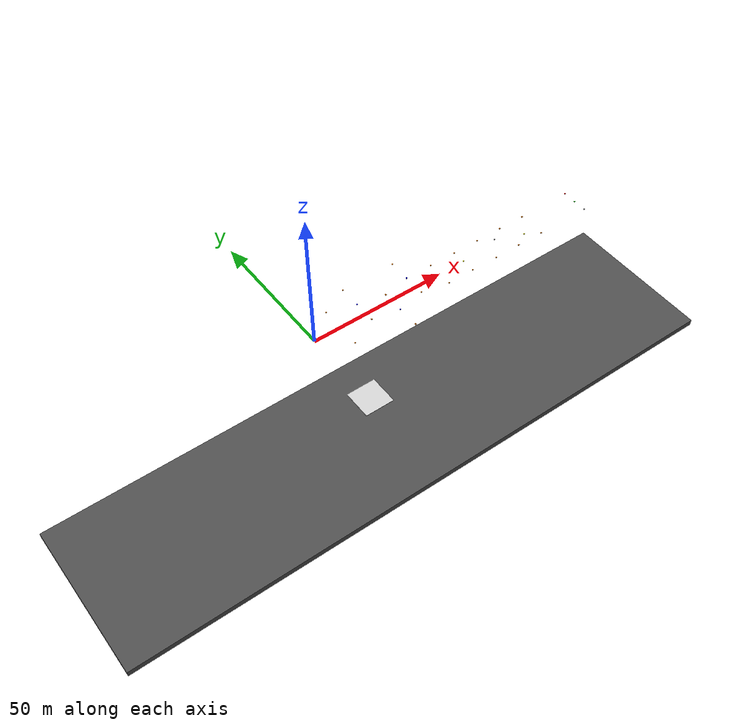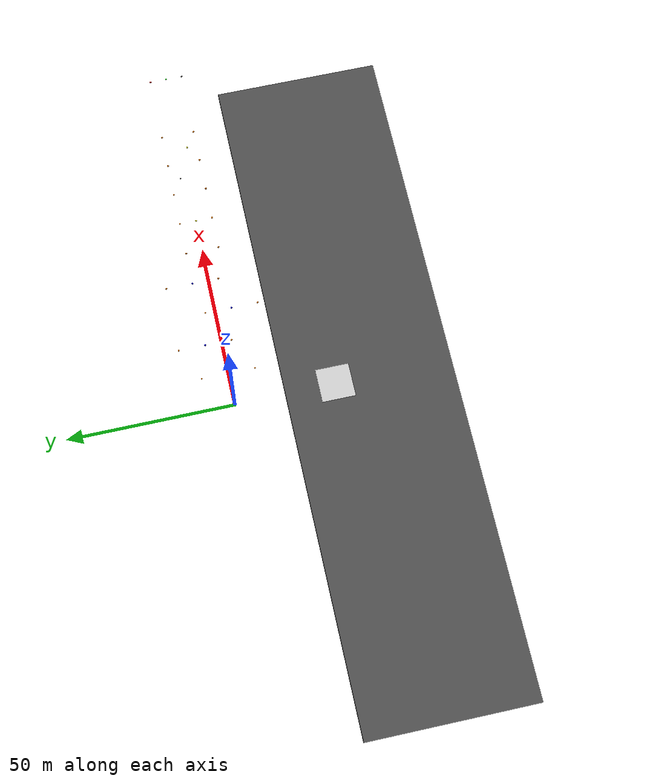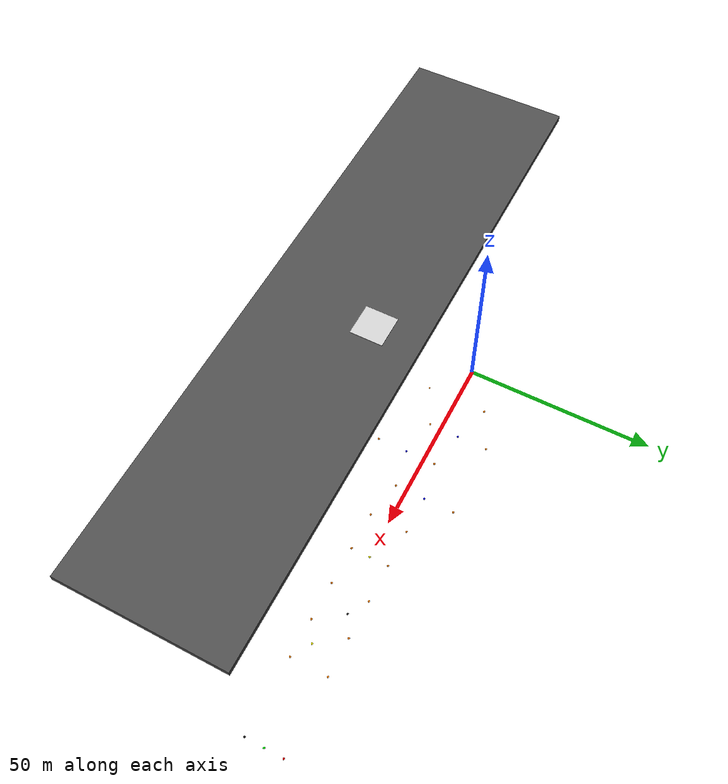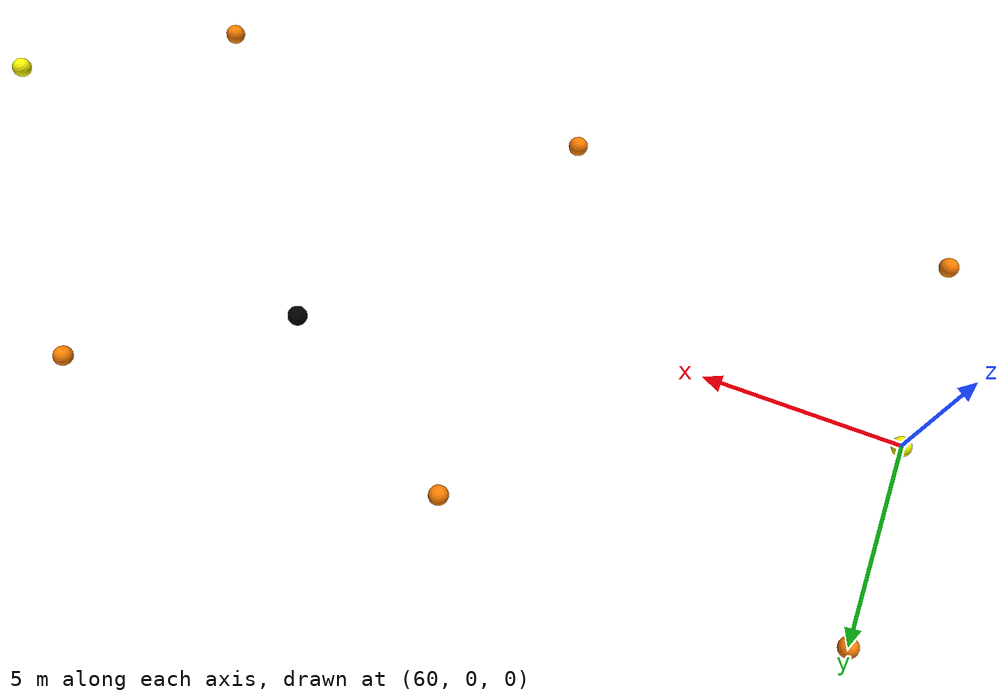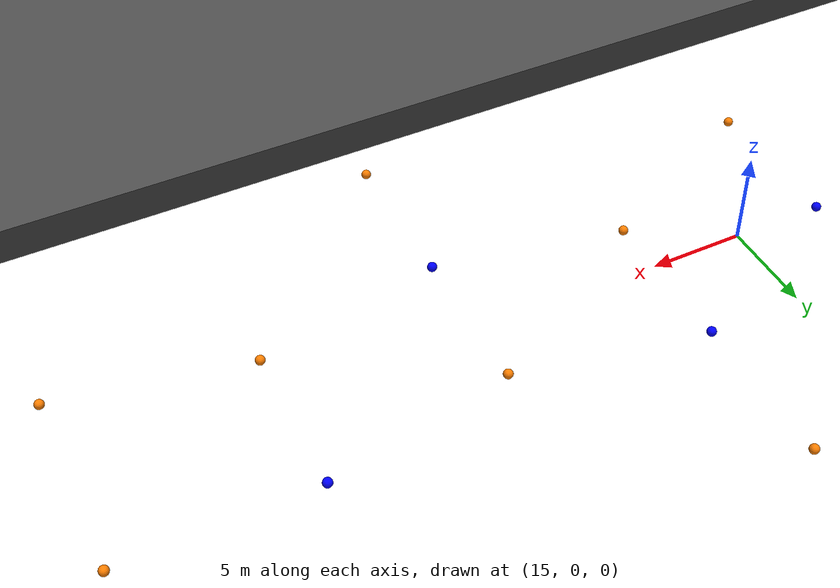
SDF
<sdf version="1.6">
 <world name="course_world">
  <plugin filename="gz-sim-physics-system" name="gz::sim::systems::Physics"/>
  <plugin filename="gz-sim-sensors-system" name="gz::sim::systems::Sensors">
   <render_engine>ogre2</render_engine>
   <background_color>0.8 0.8 0.8</background_color>
  </plugin>
  <plugin filename="gz-sim-scene-broadcaster-system" name="gz::sim::systems::SceneBroadcaster"/>
  <plugin filename="gz-sim-user-commands-system" name="gz::sim::systems::UserCommands"/>
  <plugin filename="gz-sim-imu-system" name="gz::sim::systems::Imu"/>
  <plugin filename="gz-sim-navsat-system" name="gz::sim::systems::NavSat"/>
  <spherical_coordinates>
   <surface_model>EARTH_WGS84</surface_model>
   <world_frame_orientation>ENU</world_frame_orientation>
   <latitude_deg>-22.986687</latitude_deg>
   <longitude_deg>-43.202501</longitude_deg>
   <elevation>0</elevation>
   <heading_deg>0</heading_deg>
  </spherical_coordinates>
  <scene><ambient>1.0 1.0 1.0</ambient><background>0.8 0.8 0.8</background></scene>
  <light type="directional" name="sun">
   <pose>0 0 10 0 0 0</pose>
   <diffuse>0.8 0.8 0.8 1</diffuse>
   <specular>0.6 0.6 0.6 1</specular>
   <direction>-0.5 0.1 -0.9</direction>
  </light>
  <model name="land">
   <static>true</static>
   <pose>0 -40 1 0 0 0</pose>
   <link name="link">
    <collision name="collision"><geometry><box><size>200 50 2</size></box></geometry></collision>
    <visual name="visual">
     <geometry><box><size>200 50 2</size></box></geometry>
     <material><ambient>0.3 0.3 0.3 1</ambient><diffuse>0.3 0.3 0.3 1</diffuse></material>
    </visual>
   </link>
  </model>
  <model name="drone_zone">
   <static>true</static>
   <pose>0 -30 2.1 0 0 0</pose>
   <link name="link">
    <visual name="visual">
     <geometry><box><size>10 10 0.1</size></box></geometry>
     <material><ambient>0.8 0.8 0.8 1</ambient><diffuse>0.8 0.8 0.8 1</diffuse></material>
    </visual>
   </link>
  </model>
  <model name="gn1">
   <pose>10 0 0 0 0 0</pose>
   <plugin filename="gz-waves1-hydrodynamics-system" name="gz::sim::systems::Hydrodynamics"/>
   <link name="base_link">
    <collision name="collision"><geometry><sphere><radius>0.25</radius></sphere></geometry></collision>
    <visual name="visual">
     <geometry><sphere><radius>0.25</radius></sphere></geometry>
     <material><ambient>0 0 1 1</ambient><diffuse>0 0 1 1</diffuse><specular>0.5 0.5 0.5 1</specular></material>
    </visual>
    <inertial>
     <mass>6.545</mass>
     <inertia>
      <ixx>0.1636</ixx>
      <ixy>0.0</ixy>
      <ixz>0.0</ixz>
      <iyy>0.1636</iyy>
      <iyz>0.0</iyz>
      <izz>0.1636</izz>
     </inertia>
    </inertial>
   </link>
  </model>
  <model name="gn2">
   <pose>20 5 0 0 0 0</pose>
   <plugin filename="gz-waves1-hydrodynamics-system" name="gz::sim::systems::Hydrodynamics"/>
   <link name="base_link">
    <collision name="collision"><geometry><sphere><radius>0.25</radius></sphere></geometry></collision>
    <visual name="visual">
     <geometry><sphere><radius>0.25</radius></sphere></geometry>
     <material><ambient>0 0 1 1</ambient><diffuse>0 0 1 1</diffuse><specular>0.5 0.5 0.5 1</specular></material>
    </visual>
    <inertial>
     <mass>6.545</mass>
     <inertia>
      <ixx>0.1636</ixx>
      <ixy>0.0</ixy>
      <ixz>0.0</ixz>
      <iyy>0.1636</iyy>
      <iyz>0.0</iyz>
      <izz>0.1636</izz>
     </inertia>
    </inertial>
   </link>
  </model>
  <model name="gn3">
   <pose>30 -5 0 0 0 0</pose>
   <plugin filename="gz-waves1-hydrodynamics-system" name="gz::sim::systems::Hydrodynamics"/>
   <link name="base_link">
    <collision name="collision"><geometry><sphere><radius>0.25</radius></sphere></geometry></collision>
    <visual name="visual">
     <geometry><sphere><radius>0.25</radius></sphere></geometry>
     <material><ambient>0 0 1 1</ambient><diffuse>0 0 1 1</diffuse><specular>0.5 0.5 0.5 1</specular></material>
    </visual>
    <inertial>
     <mass>6.545</mass>
     <inertia>
      <ixx>0.1636</ixx>
      <ixy>0.0</ixy>
      <ixz>0.0</ixz>
      <iyy>0.1636</iyy>
      <iyz>0.0</iyz>
      <izz>0.1636</izz>
     </inertia>
    </inertial>
   </link>
  </model>
  <model name="gn4">
   <pose>40 5 0 0 0 0</pose>
   <plugin filename="gz-waves1-hydrodynamics-system" name="gz::sim::systems::Hydrodynamics"/>
   <link name="base_link">
    <collision name="collision"><geometry><sphere><radius>0.25</radius></sphere></geometry></collision>
    <visual name="visual">
     <geometry><sphere><radius>0.25</radius></sphere></geometry>
     <material><ambient>0 0 1 1</ambient><diffuse>0 0 1 1</diffuse><specular>0.5 0.5 0.5 1</specular></material>
    </visual>
    <inertial>
     <mass>6.545</mass>
     <inertia>
      <ixx>0.1636</ixx>
      <ixy>0.0</ixy>
      <ixz>0.0</ixz>
      <iyy>0.1636</iyy>
      <iyz>0.0</iyz>
      <izz>0.1636</izz>
     </inertia>
    </inertial>
   </link>
  </model>
  <model name="edge_1_1">
   <pose>10 8 0 0 0 0</pose>
   <plugin filename="gz-waves1-hydrodynamics-system" name="gz::sim::systems::Hydrodynamics"/>
   <link name="base_link">
    <collision name="collision"><geometry><sphere><radius>0.25</radius></sphere></geometry></collision>
    <visual name="visual">
     <geometry><sphere><radius>0.25</radius></sphere></geometry>
     <material>
      <ambient>1 0.5 0 1</ambient>
      <diffuse>1 0.5 0 1</diffuse>
      <specular>0.5 0.5 0.5 1</specular>
     </material>
    </visual>
    <inertial>
     <mass>6.545</mass>
     <inertia>
      <ixx>0.1636</ixx>
      <ixy>0.0</ixy>
      <ixz>0.0</ixz>
      <iyy>0.1636</iyy>
      <iyz>0.0</iyz>
      <izz>0.1636</izz>
     </inertia>
    </inertial>
   </link>
  </model>
  <model name="edge_1_2">
   <pose>20 13 0 0 0 0</pose>
   <plugin filename="gz-waves1-hydrodynamics-system" name="gz::sim::systems::Hydrodynamics"/>
   <link name="base_link">
    <collision name="collision"><geometry><sphere><radius>0.25</radius></sphere></geometry></collision>
    <visual name="visual">
     <geometry><sphere><radius>0.25</radius></sphere></geometry>
     <material>
      <ambient>1 0.5 0 1</ambient>
      <diffuse>1 0.5 0 1</diffuse>
      <specular>0.5 0.5 0.5 1</specular>
     </material>
    </visual>
    <inertial>
     <mass>6.545</mass>
     <inertia>
      <ixx>0.1636</ixx>
      <ixy>0.0</ixy>
      <ixz>0.0</ixz>
      <iyy>0.1636</iyy>
      <iyz>0.0</iyz>
      <izz>0.1636</izz>
     </inertia>
    </inertial>
   </link>
  </model>
  <model name="edge_1_3">
   <pose>30 3 0 0 0 0</pose>
   <plugin filename="gz-waves1-hydrodynamics-system" name="gz::sim::systems::Hydrodynamics"/>
   <link name="base_link">
    <collision name="collision"><geometry><sphere><radius>0.25</radius></sphere></geometry></collision>
    <visual name="visual">
     <geometry><sphere><radius>0.25</radius></sphere></geometry>
     <material>
      <ambient>1 0.5 0 1</ambient>
      <diffuse>1 0.5 0 1</diffuse>
      <specular>0.5 0.5 0.5 1</specular>
     </material>
    </visual>
    <inertial>
     <mass>6.545</mass>
     <inertia>
      <ixx>0.1636</ixx>
      <ixy>0.0</ixy>
      <ixz>0.0</ixz>
      <iyy>0.1636</iyy>
      <iyz>0.0</iyz>
      <izz>0.1636</izz>
     </inertia>
    </inertial>
   </link>
  </model>
  <model name="edge_1_4">
   <pose>40 13 0 0 0 0</pose>
   <plugin filename="gz-waves1-hydrodynamics-system" name="gz::sim::systems::Hydrodynamics"/>
   <link name="base_link">
    <collision name="collision"><geometry><sphere><radius>0.25</radius></sphere></geometry></collision>
    <visual name="visual">
     <geometry><sphere><radius>0.25</radius></sphere></geometry>
     <material>
      <ambient>1 0.5 0 1</ambient>
      <diffuse>1 0.5 0 1</diffuse>
      <specular>0.5 0.5 0.5 1</specular>
     </material>
    </visual>
    <inertial>
     <mass>6.545</mass>
     <inertia>
      <ixx>0.1636</ixx>
      <ixy>0.0</ixy>
      <ixz>0.0</ixz>
      <iyy>0.1636</iyy>
      <iyz>0.0</iyz>
      <izz>0.1636</izz>
     </inertia>
    </inertial>
   </link>
  </model>
  <model name="edge_1_5">
   <pose>10 -8 0 0 0 0</pose>
   <plugin filename="gz-waves1-hydrodynamics-system" name="gz::sim::systems::Hydrodynamics"/>
   <link name="base_link">
    <collision name="collision"><geometry><sphere><radius>0.25</radius></sphere></geometry></collision>
    <visual name="visual">
     <geometry><sphere><radius>0.25</radius></sphere></geometry>
     <material>
      <ambient>1 0.5 0 1</ambient>
      <diffuse>1 0.5 0 1</diffuse>
      <specular>0.5 0.5 0.5 1</specular>
     </material>
    </visual>
    <inertial>
     <mass>6.545</mass>
     <inertia>
      <ixx>0.1636</ixx>
      <ixy>0.0</ixy>
      <ixz>0.0</ixz>
      <iyy>0.1636</iyy>
      <iyz>0.0</iyz>
      <izz>0.1636</izz>
     </inertia>
    </inertial>
   </link>
  </model>
  <model name="edge_1_6">
   <pose>20 -3 0 0 0 0</pose>
   <plugin filename="gz-waves1-hydrodynamics-system" name="gz::sim::systems::Hydrodynamics"/>
   <link name="base_link">
    <collision name="collision"><geometry><sphere><radius>0.25</radius></sphere></geometry></collision>
    <visual name="visual">
     <geometry><sphere><radius>0.25</radius></sphere></geometry>
     <material>
      <ambient>1 0.5 0 1</ambient>
      <diffuse>1 0.5 0 1</diffuse>
      <specular>0.5 0.5 0.5 1</specular>
     </material>
    </visual>
    <inertial>
     <mass>6.545</mass>
     <inertia>
      <ixx>0.1636</ixx>
      <ixy>0.0</ixy>
      <ixz>0.0</ixz>
      <iyy>0.1636</iyy>
      <iyz>0.0</iyz>
      <izz>0.1636</izz>
     </inertia>
    </inertial>
   </link>
  </model>
  <model name="edge_1_7">
   <pose>30 -13 0 0 0 0</pose>
   <plugin filename="gz-waves1-hydrodynamics-system" name="gz::sim::systems::Hydrodynamics"/>
   <link name="base_link">
    <collision name="collision"><geometry><sphere><radius>0.25</radius></sphere></geometry></collision>
    <visual name="visual">
     <geometry><sphere><radius>0.25</radius></sphere></geometry>
     <material>
      <ambient>1 0.5 0 1</ambient>
      <diffuse>1 0.5 0 1</diffuse>
      <specular>0.5 0.5 0.5 1</specular>
     </material>
    </visual>
    <inertial>
     <mass>6.545</mass>
     <inertia>
      <ixx>0.1636</ixx>
      <ixy>0.0</ixy>
      <ixz>0.0</ixz>
      <iyy>0.1636</iyy>
      <iyz>0.0</iyz>
      <izz>0.1636</izz>
     </inertia>
    </inertial>
   </link>
  </model>
  <model name="edge_1_8">
   <pose>40 -3 0 0 0 0</pose>
   <plugin filename="gz-waves1-hydrodynamics-system" name="gz::sim::systems::Hydrodynamics"/>
   <link name="base_link">
    <collision name="collision"><geometry><sphere><radius>0.25</radius></sphere></geometry></collision>
    <visual name="visual">
     <geometry><sphere><radius>0.25</radius></sphere></geometry>
     <material>
      <ambient>1 0.5 0 1</ambient>
      <diffuse>1 0.5 0 1</diffuse>
      <specular>0.5 0.5 0.5 1</specular>
     </material>
    </visual>
    <inertial>
     <mass>6.545</mass>
     <inertia>
      <ixx>0.1636</ixx>
      <ixy>0.0</ixy>
      <ixz>0.0</ixz>
      <iyy>0.1636</iyy>
      <iyz>0.0</iyz>
      <izz>0.1636</izz>
     </inertia>
    </inertial>
   </link>
  </model>
  <model name="edge_2_top_50">
   <pose>50 5 0 0 0 0</pose>
   <plugin filename="gz-waves1-hydrodynamics-system" name="gz::sim::systems::Hydrodynamics"/>
   <link name="base_link">
    <collision name="collision"><geometry><sphere><radius>0.25</radius></sphere></geometry></collision>
    <visual name="visual">
     <geometry><sphere><radius>0.25</radius></sphere></geometry>
     <material>
      <ambient>1 0.5 0 1</ambient>
      <diffuse>1 0.5 0 1</diffuse>
      <specular>0.5 0.5 0.5 1</specular>
     </material>
    </visual>
    <inertial>
     <mass>6.545</mass>
     <inertia>
      <ixx>0.1636</ixx>
      <ixy>0.0</ixy>
      <ixz>0.0</ixz>
      <iyy>0.1636</iyy>
      <iyz>0.0</iyz>
      <izz>0.1636</izz>
     </inertia>
    </inertial>
   </link>
  </model>
  <model name="edge_2_bot_50">
   <pose>50 -5 0 0 0 0</pose>
   <plugin filename="gz-waves1-hydrodynamics-system" name="gz::sim::systems::Hydrodynamics"/>
   <link name="base_link">
    <collision name="collision"><geometry><sphere><radius>0.25</radius></sphere></geometry></collision>
    <visual name="visual">
     <geometry><sphere><radius>0.25</radius></sphere></geometry>
     <material>
      <ambient>1 0.5 0 1</ambient>
      <diffuse>1 0.5 0 1</diffuse>
      <specular>0.5 0.5 0.5 1</specular>
     </material>
    </visual>
    <inertial>
     <mass>6.545</mass>
     <inertia>
      <ixx>0.1636</ixx>
      <ixy>0.0</ixy>
      <ixz>0.0</ixz>
      <iyy>0.1636</iyy>
      <iyz>0.0</iyz>
      <izz>0.1636</izz>
     </inertia>
    </inertial>
   </link>
  </model>
  <model name="edge_2_top_60">
   <pose>60 5 0 0 0 0</pose>
   <plugin filename="gz-waves1-hydrodynamics-system" name="gz::sim::systems::Hydrodynamics"/>
   <link name="base_link">
    <collision name="collision"><geometry><sphere><radius>0.25</radius></sphere></geometry></collision>
    <visual name="visual">
     <geometry><sphere><radius>0.25</radius></sphere></geometry>
     <material>
      <ambient>1 0.5 0 1</ambient>
      <diffuse>1 0.5 0 1</diffuse>
      <specular>0.5 0.5 0.5 1</specular>
     </material>
    </visual>
    <inertial>
     <mass>6.545</mass>
     <inertia>
      <ixx>0.1636</ixx>
      <ixy>0.0</ixy>
      <ixz>0.0</ixz>
      <iyy>0.1636</iyy>
      <iyz>0.0</iyz>
      <izz>0.1636</izz>
     </inertia>
    </inertial>
   </link>
  </model>
  <model name="edge_2_bot_60">
   <pose>60 -5 0 0 0 0</pose>
   <plugin filename="gz-waves1-hydrodynamics-system" name="gz::sim::systems::Hydrodynamics"/>
   <link name="base_link">
    <collision name="collision"><geometry><sphere><radius>0.25</radius></sphere></geometry></collision>
    <visual name="visual">
     <geometry><sphere><radius>0.25</radius></sphere></geometry>
     <material>
      <ambient>1 0.5 0 1</ambient>
      <diffuse>1 0.5 0 1</diffuse>
      <specular>0.5 0.5 0.5 1</specular>
     </material>
    </visual>
    <inertial>
     <mass>6.545</mass>
     <inertia>
      <ixx>0.1636</ixx>
      <ixy>0.0</ixy>
      <ixz>0.0</ixz>
      <iyy>0.1636</iyy>
      <iyz>0.0</iyz>
      <izz>0.1636</izz>
     </inertia>
    </inertial>
   </link>
  </model>
  <model name="edge_2_top_70">
   <pose>70 5 0 0 0 0</pose>
   <plugin filename="gz-waves1-hydrodynamics-system" name="gz::sim::systems::Hydrodynamics"/>
   <link name="base_link">
    <collision name="collision"><geometry><sphere><radius>0.25</radius></sphere></geometry></collision>
    <visual name="visual">
     <geometry><sphere><radius>0.25</radius></sphere></geometry>
     <material>
      <ambient>1 0.5 0 1</ambient>
      <diffuse>1 0.5 0 1</diffuse>
      <specular>0.5 0.5 0.5 1</specular>
     </material>
    </visual>
    <inertial>
     <mass>6.545</mass>
     <inertia>
      <ixx>0.1636</ixx>
      <ixy>0.0</ixy>
      <ixz>0.0</ixz>
      <iyy>0.1636</iyy>
      <iyz>0.0</iyz>
      <izz>0.1636</izz>
     </inertia>
    </inertial>
   </link>
  </model>
  <model name="edge_2_bot_70">
   <pose>70 -5 0 0 0 0</pose>
   <plugin filename="gz-waves1-hydrodynamics-system" name="gz::sim::systems::Hydrodynamics"/>
   <link name="base_link">
    <collision name="collision"><geometry><sphere><radius>0.25</radius></sphere></geometry></collision>
    <visual name="visual">
     <geometry><sphere><radius>0.25</radius></sphere></geometry>
     <material>
      <ambient>1 0.5 0 1</ambient>
      <diffuse>1 0.5 0 1</diffuse>
      <specular>0.5 0.5 0.5 1</specular>
     </material>
    </visual>
    <inertial>
     <mass>6.545</mass>
     <inertia>
      <ixx>0.1636</ixx>
      <ixy>0.0</ixy>
      <ixz>0.0</ixz>
      <iyy>0.1636</iyy>
      <iyz>0.0</iyz>
      <izz>0.1636</izz>
     </inertia>
    </inertial>
   </link>
  </model>
  <model name="edge_2_top_80">
   <pose>80 5 0 0 0 0</pose>
   <plugin filename="gz-waves1-hydrodynamics-system" name="gz::sim::systems::Hydrodynamics"/>
   <link name="base_link">
    <collision name="collision"><geometry><sphere><radius>0.25</radius></sphere></geometry></collision>
    <visual name="visual">
     <geometry><sphere><radius>0.25</radius></sphere></geometry>
     <material>
      <ambient>1 0.5 0 1</ambient>
      <diffuse>1 0.5 0 1</diffuse>
      <specular>0.5 0.5 0.5 1</specular>
     </material>
    </visual>
    <inertial>
     <mass>6.545</mass>
     <inertia>
      <ixx>0.1636</ixx>
      <ixy>0.0</ixy>
      <ixz>0.0</ixz>
      <iyy>0.1636</iyy>
      <iyz>0.0</iyz>
      <izz>0.1636</izz>
     </inertia>
    </inertial>
   </link>
  </model>
  <model name="edge_2_bot_80">
   <pose>80 -5 0 0 0 0</pose>
   <plugin filename="gz-waves1-hydrodynamics-system" name="gz::sim::systems::Hydrodynamics"/>
   <link name="base_link">
    <collision name="collision"><geometry><sphere><radius>0.25</radius></sphere></geometry></collision>
    <visual name="visual">
     <geometry><sphere><radius>0.25</radius></sphere></geometry>
     <material>
      <ambient>1 0.5 0 1</ambient>
      <diffuse>1 0.5 0 1</diffuse>
      <specular>0.5 0.5 0.5 1</specular>
     </material>
    </visual>
    <inertial>
     <mass>6.545</mass>
     <inertia>
      <ixx>0.1636</ixx>
      <ixy>0.0</ixy>
      <ixz>0.0</ixz>
      <iyy>0.1636</iyy>
      <iyz>0.0</iyz>
      <izz>0.1636</izz>
     </inertia>
    </inertial>
   </link>
  </model>
  <model name="edge_2_top_90">
   <pose>90 5 0 0 0 0</pose>
   <plugin filename="gz-waves1-hydrodynamics-system" name="gz::sim::systems::Hydrodynamics"/>
   <link name="base_link">
    <collision name="collision"><geometry><sphere><radius>0.25</radius></sphere></geometry></collision>
    <visual name="visual">
     <geometry><sphere><radius>0.25</radius></sphere></geometry>
     <material>
      <ambient>1 0.5 0 1</ambient>
      <diffuse>1 0.5 0 1</diffuse>
      <specular>0.5 0.5 0.5 1</specular>
     </material>
    </visual>
    <inertial>
     <mass>6.545</mass>
     <inertia>
      <ixx>0.1636</ixx>
      <ixy>0.0</ixy>
      <ixz>0.0</ixz>
      <iyy>0.1636</iyy>
      <iyz>0.0</iyz>
      <izz>0.1636</izz>
     </inertia>
    </inertial>
   </link>
  </model>
  <model name="edge_2_bot_90">
   <pose>90 -5 0 0 0 0</pose>
   <plugin filename="gz-waves1-hydrodynamics-system" name="gz::sim::systems::Hydrodynamics"/>
   <link name="base_link">
    <collision name="collision"><geometry><sphere><radius>0.25</radius></sphere></geometry></collision>
    <visual name="visual">
     <geometry><sphere><radius>0.25</radius></sphere></geometry>
     <material>
      <ambient>1 0.5 0 1</ambient>
      <diffuse>1 0.5 0 1</diffuse>
      <specular>0.5 0.5 0.5 1</specular>
     </material>
    </visual>
    <inertial>
     <mass>6.545</mass>
     <inertia>
      <ixx>0.1636</ixx>
      <ixy>0.0</ixy>
      <ixz>0.0</ixz>
      <iyy>0.1636</iyy>
      <iyz>0.0</iyz>
      <izz>0.1636</izz>
     </inertia>
    </inertial>
   </link>
  </model>
  <model name="obs_1">
   <pose>60 0 0 0 0 0</pose>
   <plugin filename="gz-waves1-hydrodynamics-system" name="gz::sim::systems::Hydrodynamics"/>
   <link name="base_link">
    <collision name="collision"><geometry><sphere><radius>0.25</radius></sphere></geometry></collision>
    <visual name="visual">
     <geometry><sphere><radius>0.25</radius></sphere></geometry>
     <material><ambient>1 1 0 1</ambient><diffuse>1 1 0 1</diffuse><specular>0.5 0.5 0.5 1</specular></material>
    </visual>
    <inertial>
     <mass>6.545</mass>
     <inertia>
      <ixx>0.1636</ixx>
      <ixy>0.0</ixy>
      <ixz>0.0</ixz>
      <iyy>0.1636</iyy>
      <iyz>0.0</iyz>
      <izz>0.1636</izz>
     </inertia>
    </inertial>
   </link>
  </model>
  <model name="obs_2">
   <pose>75 2 0 0 0 0</pose>
   <plugin filename="gz-waves1-hydrodynamics-system" name="gz::sim::systems::Hydrodynamics"/>
   <link name="base_link">
    <collision name="collision"><geometry><sphere><radius>0.25</radius></sphere></geometry></collision>
    <visual name="visual">
     <geometry><sphere><radius>0.25</radius></sphere></geometry>
     <material><ambient>0 0 0 1</ambient><diffuse>0 0 0 1</diffuse><specular>0.5 0.5 0.5 1</specular></material>
    </visual>
    <inertial>
     <mass>6.545</mass>
     <inertia>
      <ixx>0.1636</ixx>
      <ixy>0.0</ixy>
      <ixz>0.0</ixz>
      <iyy>0.1636</iyy>
      <iyz>0.0</iyz>
      <izz>0.1636</izz>
     </inertia>
    </inertial>
   </link>
  </model>
  <model name="obs_3">
   <pose>85 -2 0 0 0 0</pose>
   <plugin filename="gz-waves1-hydrodynamics-system" name="gz::sim::systems::Hydrodynamics"/>
   <link name="base_link">
    <collision name="collision"><geometry><sphere><radius>0.25</radius></sphere></geometry></collision>
    <visual name="visual">
     <geometry><sphere><radius>0.25</radius></sphere></geometry>
     <material><ambient>1 1 0 1</ambient><diffuse>1 1 0 1</diffuse><specular>0.5 0.5 0.5 1</specular></material>
    </visual>
    <inertial>
     <mass>6.545</mass>
     <inertia>
      <ixx>0.1636</ixx>
      <ixy>0.0</ixy>
      <ixz>0.0</ixz>
      <iyy>0.1636</iyy>
      <iyz>0.0</iyz>
      <izz>0.1636</izz>
     </inertia>
    </inertial>
   </link>
  </model>
  <model name="target_red">
   <pose>110 5 0 0 0 0</pose>
   <plugin filename="gz-waves1-hydrodynamics-system" name="gz::sim::systems::Hydrodynamics"/>
   <link name="base_link">
    <collision name="collision"><geometry><sphere><radius>0.25</radius></sphere></geometry></collision>
    <visual name="visual">
     <geometry><sphere><radius>0.25</radius></sphere></geometry>
     <material><ambient>1 0 0 1</ambient><diffuse>1 0 0 1</diffuse><specular>0.5 0.5 0.5 1</specular></material>
    </visual>
    <inertial>
     <mass>6.545</mass>
     <inertia>
      <ixx>0.1636</ixx>
      <ixy>0.0</ixy>
      <ixz>0.0</ixz>
      <iyy>0.1636</iyy>
      <iyz>0.0</iyz>
      <izz>0.1636</izz>
     </inertia>
    </inertial>
   </link>
  </model>
  <model name="target_green">
   <pose>110 0 0 0 0 0</pose>
   <plugin filename="gz-waves1-hydrodynamics-system" name="gz::sim::systems::Hydrodynamics"/>
   <link name="base_link">
    <collision name="collision"><geometry><sphere><radius>0.25</radius></sphere></geometry></collision>
    <visual name="visual">
     <geometry><sphere><radius>0.25</radius></sphere></geometry>
     <material><ambient>0 1 0 1</ambient><diffuse>0 1 0 1</diffuse><specular>0.5 0.5 0.5 1</specular></material>
    </visual>
    <inertial>
     <mass>6.545</mass>
     <inertia>
      <ixx>0.1636</ixx>
      <ixy>0.0</ixy>
      <ixz>0.0</ixz>
      <iyy>0.1636</iyy>
      <iyz>0.0</iyz>
      <izz>0.1636</izz>
     </inertia>
    </inertial>
   </link>
  </model>
  <model name="target_black">
   <pose>110 -5 0 0 0 0</pose>
   <plugin filename="gz-waves1-hydrodynamics-system" name="gz::sim::systems::Hydrodynamics"/>
   <link name="base_link">
    <collision name="collision"><geometry><sphere><radius>0.25</radius></sphere></geometry></collision>
    <visual name="visual">
     <geometry><sphere><radius>0.25</radius></sphere></geometry>
     <material><ambient>0 0 0 1</ambient><diffuse>0 0 0 1</diffuse><specular>0.5 0.5 0.5 1</specular></material>
    </visual>
    <inertial>
     <mass>6.545</mass>
     <inertia>
      <ixx>0.1636</ixx>
      <ixy>0.0</ixy>
      <ixz>0.0</ixz>
      <iyy>0.1636</iyy>
      <iyz>0.0</iyz>
      <izz>0.1636</izz>
     </inertia>
    </inertial>
   </link>
  </model>
 </world>
</sdf>
